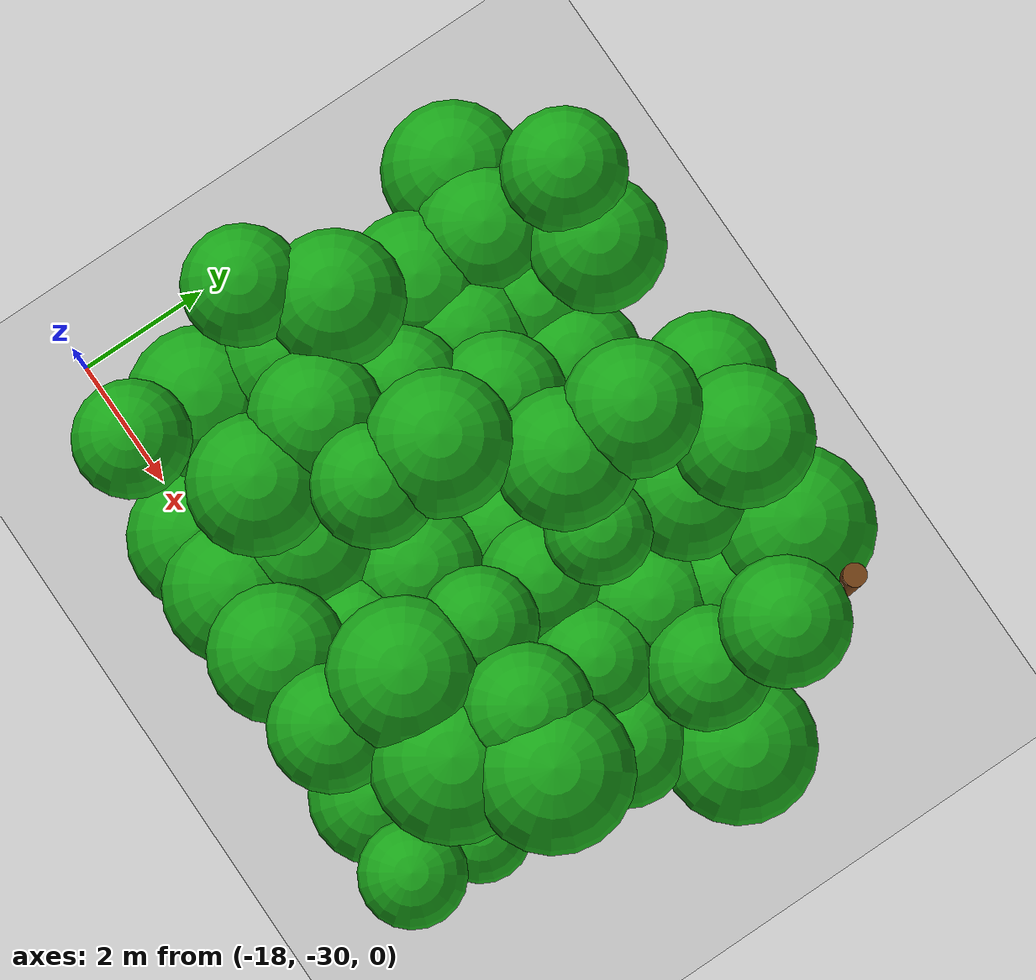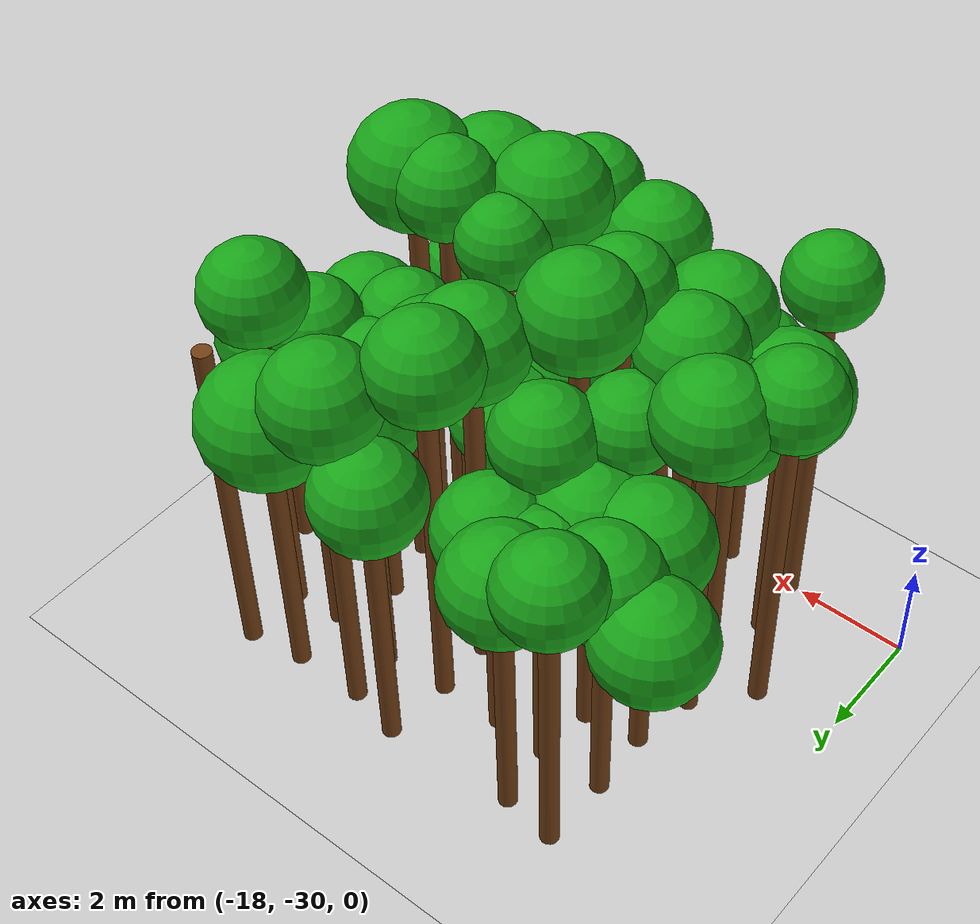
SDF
<sdf version="1.6">
 <world name="forest_world">
  <include><uri>model://sun</uri></include>
  <include><uri>model://ground_plane</uri></include>
  <model name="tree_662_trunk">
   <static>true</static>
   <pose>-16.62 -27.72 3.23 0 0 0</pose>
   <link name="link">
    <collision name="collision">
     <geometry><cylinder><radius>0.16</radius><length>6.46</length></cylinder></geometry>
    </collision>
    <visual name="visual">
     <geometry><cylinder><radius>0.16</radius><length>6.46</length></cylinder></geometry>
     <material><ambient>0.35 0.20 0.05 1</ambient><diffuse>0.45 0.25 0.08 1</diffuse></material>
    </visual>
   </link>
  </model>
  <model name="tree_662_leaf">
   <static>true</static>
   <pose>-16.62 -27.72 6.94 0 0 0</pose>
   <link name="link">
    <collision name="collision"><geometry><sphere><radius>0.81</radius></sphere></geometry></collision>
    <visual name="visual">
     <geometry><sphere><radius>0.81</radius></sphere></geometry>
     <material><ambient>0.05 0.45 0.05 1</ambient><diffuse>0.10 0.65 0.10 1</diffuse></material>
    </visual>
   </link>
  </model>
  <model name="tree_665_leaf">
   <static>true</static>
   <pose>-16.67 -24.44 4.72 0 0 0</pose>
   <link name="link">
    <collision name="collision"><geometry><sphere><radius>0.98</radius></sphere></geometry></collision>
    <visual name="visual">
     <geometry><sphere><radius>0.98</radius></sphere></geometry>
     <material><ambient>0.05 0.45 0.05 1</ambient><diffuse>0.10 0.65 0.10 1</diffuse></material>
    </visual>
   </link>
  </model>
  <model name="tree_715_trunk">
   <static>true</static>
   <pose>-15.74 -29.99 3.32 0 0 0</pose>
   <link name="link">
    <collision name="collision">
     <geometry><cylinder><radius>0.16</radius><length>6.65</length></cylinder></geometry>
    </collision>
    <visual name="visual">
     <geometry><cylinder><radius>0.16</radius><length>6.65</length></cylinder></geometry>
     <material><ambient>0.35 0.20 0.05 1</ambient><diffuse>0.45 0.25 0.08 1</diffuse></material>
    </visual>
   </link>
  </model>
  <model name="tree_715_leaf">
   <static>true</static>
   <pose>-15.74 -29.99 7.12 0 0 0</pose>
   <link name="link">
    <collision name="collision"><geometry><sphere><radius>0.78</radius></sphere></geometry></collision>
    <visual name="visual">
     <geometry><sphere><radius>0.78</radius></sphere></geometry>
     <material><ambient>0.05 0.45 0.05 1</ambient><diffuse>0.10 0.65 0.10 1</diffuse></material>
    </visual>
   </link>
  </model>
  <model name="tree_716_trunk">
   <static>true</static>
   <pose>-15.84 -28.95 2.51 0 0 0</pose>
   <link name="link">
    <collision name="collision">
     <geometry><cylinder><radius>0.16</radius><length>5.02</length></cylinder></geometry>
    </collision>
    <visual name="visual">
     <geometry><cylinder><radius>0.16</radius><length>5.02</length></cylinder></geometry>
     <material><ambient>0.35 0.20 0.05 1</ambient><diffuse>0.45 0.25 0.08 1</diffuse></material>
    </visual>
   </link>
  </model>
  <model name="tree_716_leaf">
   <static>true</static>
   <pose>-15.84 -28.95 5.63 0 0 0</pose>
   <link name="link">
    <collision name="collision"><geometry><sphere><radius>1.03</radius></sphere></geometry></collision>
    <visual name="visual">
     <geometry><sphere><radius>1.03</radius></sphere></geometry>
     <material><ambient>0.05 0.45 0.05 1</ambient><diffuse>0.10 0.65 0.10 1</diffuse></material>
    </visual>
   </link>
  </model>
  <model name="tree_717_trunk">
   <static>true</static>
   <pose>-15.61 -27.68 2.65 0 0 0</pose>
   <link name="link">
    <collision name="collision">
     <geometry><cylinder><radius>0.16</radius><length>5.31</length></cylinder></geometry>
    </collision>
    <visual name="visual">
     <geometry><cylinder><radius>0.16</radius><length>5.31</length></cylinder></geometry>
     <material><ambient>0.35 0.20 0.05 1</ambient><diffuse>0.45 0.25 0.08 1</diffuse></material>
    </visual>
   </link>
  </model>
  <model name="tree_717_leaf">
   <static>true</static>
   <pose>-15.61 -27.68 5.90 0 0 0</pose>
   <link name="link">
    <collision name="collision"><geometry><sphere><radius>0.99</radius></sphere></geometry></collision>
    <visual name="visual">
     <geometry><sphere><radius>0.99</radius></sphere></geometry>
     <material><ambient>0.05 0.45 0.05 1</ambient><diffuse>0.10 0.65 0.10 1</diffuse></material>
    </visual>
   </link>
  </model>
  <model name="tree_718_trunk">
   <static>true</static>
   <pose>-15.83 -26.83 3.10 0 0 0</pose>
   <link name="link">
    <collision name="collision">
     <geometry><cylinder><radius>0.16</radius><length>6.21</length></cylinder></geometry>
    </collision>
    <visual name="visual">
     <geometry><cylinder><radius>0.16</radius><length>6.21</length></cylinder></geometry>
     <material><ambient>0.35 0.20 0.05 1</ambient><diffuse>0.45 0.25 0.08 1</diffuse></material>
    </visual>
   </link>
  </model>
  <model name="tree_718_leaf">
   <static>true</static>
   <pose>-15.83 -26.83 6.77 0 0 0</pose>
   <link name="link">
    <collision name="collision"><geometry><sphere><radius>0.93</radius></sphere></geometry></collision>
    <visual name="visual">
     <geometry><sphere><radius>0.93</radius></sphere></geometry>
     <material><ambient>0.05 0.45 0.05 1</ambient><diffuse>0.10 0.65 0.10 1</diffuse></material>
    </visual>
   </link>
  </model>
  <model name="tree_719_trunk">
   <static>true</static>
   <pose>-15.63 -25.71 2.13 0 0 0</pose>
   <link name="link">
    <collision name="collision">
     <geometry><cylinder><radius>0.16</radius><length>4.26</length></cylinder></geometry>
    </collision>
    <visual name="visual">
     <geometry><cylinder><radius>0.16</radius><length>4.26</length></cylinder></geometry>
     <material><ambient>0.35 0.20 0.05 1</ambient><diffuse>0.45 0.25 0.08 1</diffuse></material>
    </visual>
   </link>
  </model>
  <model name="tree_719_leaf">
   <static>true</static>
   <pose>-15.63 -25.71 4.89 0 0 0</pose>
   <link name="link">
    <collision name="collision"><geometry><sphere><radius>1.04</radius></sphere></geometry></collision>
    <visual name="visual">
     <geometry><sphere><radius>1.04</radius></sphere></geometry>
     <material><ambient>0.05 0.45 0.05 1</ambient><diffuse>0.10 0.65 0.10 1</diffuse></material>
    </visual>
   </link>
  </model>
  <model name="tree_720_trunk">
   <static>true</static>
   <pose>-15.69 -24.60 2.28 0 0 0</pose>
   <link name="link">
    <collision name="collision">
     <geometry><cylinder><radius>0.16</radius><length>4.55</length></cylinder></geometry>
    </collision>
    <visual name="visual">
     <geometry><cylinder><radius>0.16</radius><length>4.55</length></cylinder></geometry>
     <material><ambient>0.35 0.20 0.05 1</ambient><diffuse>0.45 0.25 0.08 1</diffuse></material>
    </visual>
   </link>
  </model>
  <model name="tree_720_leaf">
   <static>true</static>
   <pose>-15.69 -24.60 5.12 0 0 0</pose>
   <link name="link">
    <collision name="collision"><geometry><sphere><radius>0.94</radius></sphere></geometry></collision>
    <visual name="visual">
     <geometry><sphere><radius>0.94</radius></sphere></geometry>
     <material><ambient>0.05 0.45 0.05 1</ambient><diffuse>0.10 0.65 0.10 1</diffuse></material>
    </visual>
   </link>
  </model>
  <model name="tree_721_trunk">
   <static>true</static>
   <pose>-15.66 -23.36 2.80 0 0 0</pose>
   <link name="link">
    <collision name="collision">
     <geometry><cylinder><radius>0.16</radius><length>5.59</length></cylinder></geometry>
    </collision>
    <visual name="visual">
     <geometry><cylinder><radius>0.16</radius><length>5.59</length></cylinder></geometry>
     <material><ambient>0.35 0.20 0.05 1</ambient><diffuse>0.45 0.25 0.08 1</diffuse></material>
    </visual>
   </link>
  </model>
  <model name="tree_721_leaf">
   <static>true</static>
   <pose>-15.66 -23.36 6.10 0 0 0</pose>
   <link name="link">
    <collision name="collision"><geometry><sphere><radius>0.85</radius></sphere></geometry></collision>
    <visual name="visual">
     <geometry><sphere><radius>0.85</radius></sphere></geometry>
     <material><ambient>0.05 0.45 0.05 1</ambient><diffuse>0.10 0.65 0.10 1</diffuse></material>
    </visual>
   </link>
  </model>
  <model name="tree_770_trunk">
   <static>true</static>
   <pose>-14.48 -29.97 2.04 0 0 0</pose>
   <link name="link">
    <collision name="collision">
     <geometry><cylinder><radius>0.16</radius><length>4.09</length></cylinder></geometry>
    </collision>
    <visual name="visual">
     <geometry><cylinder><radius>0.16</radius><length>4.09</length></cylinder></geometry>
     <material><ambient>0.35 0.20 0.05 1</ambient><diffuse>0.45 0.25 0.08 1</diffuse></material>
    </visual>
   </link>
  </model>
  <model name="tree_770_leaf">
   <static>true</static>
   <pose>-14.48 -29.97 4.69 0 0 0</pose>
   <link name="link">
    <collision name="collision"><geometry><sphere><radius>1.00</radius></sphere></geometry></collision>
    <visual name="visual">
     <geometry><sphere><radius>1.00</radius></sphere></geometry>
     <material><ambient>0.05 0.45 0.05 1</ambient><diffuse>0.10 0.65 0.10 1</diffuse></material>
    </visual>
   </link>
  </model>
  <model name="tree_771_trunk">
   <static>true</static>
   <pose>-14.43 -28.97 2.95 0 0 0</pose>
   <link name="link">
    <collision name="collision">
     <geometry><cylinder><radius>0.16</radius><length>5.91</length></cylinder></geometry>
    </collision>
    <visual name="visual">
     <geometry><cylinder><radius>0.16</radius><length>5.91</length></cylinder></geometry>
     <material><ambient>0.35 0.20 0.05 1</ambient><diffuse>0.45 0.25 0.08 1</diffuse></material>
    </visual>
   </link>
  </model>
  <model name="tree_771_leaf">
   <static>true</static>
   <pose>-14.43 -28.97 6.47 0 0 0</pose>
   <link name="link">
    <collision name="collision"><geometry><sphere><radius>0.95</radius></sphere></geometry></collision>
    <visual name="visual">
     <geometry><sphere><radius>0.95</radius></sphere></geometry>
     <material><ambient>0.05 0.45 0.05 1</ambient><diffuse>0.10 0.65 0.10 1</diffuse></material>
    </visual>
   </link>
  </model>
  <model name="tree_772_trunk">
   <static>true</static>
   <pose>-14.71 -27.88 3.06 0 0 0</pose>
   <link name="link">
    <collision name="collision">
     <geometry><cylinder><radius>0.16</radius><length>6.11</length></cylinder></geometry>
    </collision>
    <visual name="visual">
     <geometry><cylinder><radius>0.16</radius><length>6.11</length></cylinder></geometry>
     <material><ambient>0.35 0.20 0.05 1</ambient><diffuse>0.45 0.25 0.08 1</diffuse></material>
    </visual>
   </link>
  </model>
  <model name="tree_772_leaf">
   <static>true</static>
   <pose>-14.71 -27.88 6.65 0 0 0</pose>
   <link name="link">
    <collision name="collision"><geometry><sphere><radius>0.90</radius></sphere></geometry></collision>
    <visual name="visual">
     <geometry><sphere><radius>0.90</radius></sphere></geometry>
     <material><ambient>0.05 0.45 0.05 1</ambient><diffuse>0.10 0.65 0.10 1</diffuse></material>
    </visual>
   </link>
  </model>
  <model name="tree_773_trunk">
   <static>true</static>
   <pose>-14.51 -26.69 2.72 0 0 0</pose>
   <link name="link">
    <collision name="collision">
     <geometry><cylinder><radius>0.16</radius><length>5.45</length></cylinder></geometry>
    </collision>
    <visual name="visual">
     <geometry><cylinder><radius>0.16</radius><length>5.45</length></cylinder></geometry>
     <material><ambient>0.35 0.20 0.05 1</ambient><diffuse>0.45 0.25 0.08 1</diffuse></material>
    </visual>
   </link>
  </model>
  <model name="tree_773_leaf">
   <static>true</static>
   <pose>-14.51 -26.69 5.94 0 0 0</pose>
   <link name="link">
    <collision name="collision"><geometry><sphere><radius>0.81</radius></sphere></geometry></collision>
    <visual name="visual">
     <geometry><sphere><radius>0.81</radius></sphere></geometry>
     <material><ambient>0.05 0.45 0.05 1</ambient><diffuse>0.10 0.65 0.10 1</diffuse></material>
    </visual>
   </link>
  </model>
  <model name="tree_774_trunk">
   <static>true</static>
   <pose>-14.67 -25.55 2.17 0 0 0</pose>
   <link name="link">
    <collision name="collision">
     <geometry><cylinder><radius>0.16</radius><length>4.33</length></cylinder></geometry>
    </collision>
    <visual name="visual">
     <geometry><cylinder><radius>0.16</radius><length>4.33</length></cylinder></geometry>
     <material><ambient>0.35 0.20 0.05 1</ambient><diffuse>0.45 0.25 0.08 1</diffuse></material>
    </visual>
   </link>
  </model>
  <model name="tree_774_leaf">
   <static>true</static>
   <pose>-14.67 -25.55 4.91 0 0 0</pose>
   <link name="link">
    <collision name="collision"><geometry><sphere><radius>0.96</radius></sphere></geometry></collision>
    <visual name="visual">
     <geometry><sphere><radius>0.96</radius></sphere></geometry>
     <material><ambient>0.05 0.45 0.05 1</ambient><diffuse>0.10 0.65 0.10 1</diffuse></material>
    </visual>
   </link>
  </model>
  <model name="tree_775_trunk">
   <static>true</static>
   <pose>-14.57 -24.55 2.06 0 0 0</pose>
   <link name="link">
    <collision name="collision">
     <geometry><cylinder><radius>0.16</radius><length>4.13</length></cylinder></geometry>
    </collision>
    <visual name="visual">
     <geometry><cylinder><radius>0.16</radius><length>4.13</length></cylinder></geometry>
     <material><ambient>0.35 0.20 0.05 1</ambient><diffuse>0.45 0.25 0.08 1</diffuse></material>
    </visual>
   </link>
  </model>
  <model name="tree_775_leaf">
   <static>true</static>
   <pose>-14.57 -24.55 4.69 0 0 0</pose>
   <link name="link">
    <collision name="collision"><geometry><sphere><radius>0.94</radius></sphere></geometry></collision>
    <visual name="visual">
     <geometry><sphere><radius>0.94</radius></sphere></geometry>
     <material><ambient>0.05 0.45 0.05 1</ambient><diffuse>0.10 0.65 0.10 1</diffuse></material>
    </visual>
   </link>
  </model>
  <model name="tree_776_trunk">
   <static>true</static>
   <pose>-14.71 -23.48 2.42 0 0 0</pose>
   <link name="link">
    <collision name="collision">
     <geometry><cylinder><radius>0.16</radius><length>4.84</length></cylinder></geometry>
    </collision>
    <visual name="visual">
     <geometry><cylinder><radius>0.16</radius><length>4.84</length></cylinder></geometry>
     <material><ambient>0.35 0.20 0.05 1</ambient><diffuse>0.45 0.25 0.08 1</diffuse></material>
    </visual>
   </link>
  </model>
  <model name="tree_776_leaf">
   <static>true</static>
   <pose>-14.71 -23.48 5.40 0 0 0</pose>
   <link name="link">
    <collision name="collision"><geometry><sphere><radius>0.95</radius></sphere></geometry></collision>
    <visual name="visual">
     <geometry><sphere><radius>0.95</radius></sphere></geometry>
     <material><ambient>0.05 0.45 0.05 1</ambient><diffuse>0.10 0.65 0.10 1</diffuse></material>
    </visual>
   </link>
  </model>
  <model name="tree_825_trunk">
   <static>true</static>
   <pose>-13.56 -29.96 2.31 0 0 0</pose>
   <link name="link">
    <collision name="collision">
     <geometry><cylinder><radius>0.16</radius><length>4.62</length></cylinder></geometry>
    </collision>
    <visual name="visual">
     <geometry><cylinder><radius>0.16</radius><length>4.62</length></cylinder></geometry>
     <material><ambient>0.35 0.20 0.05 1</ambient><diffuse>0.45 0.25 0.08 1</diffuse></material>
    </visual>
   </link>
  </model>
  <model name="tree_825_leaf">
   <static>true</static>
   <pose>-13.56 -29.96 5.22 0 0 0</pose>
   <link name="link">
    <collision name="collision"><geometry><sphere><radius>1.01</radius></sphere></geometry></collision>
    <visual name="visual">
     <geometry><sphere><radius>1.01</radius></sphere></geometry>
     <material><ambient>0.05 0.45 0.05 1</ambient><diffuse>0.10 0.65 0.10 1</diffuse></material>
    </visual>
   </link>
  </model>
  <model name="tree_826_trunk">
   <static>true</static>
   <pose>-13.60 -28.83 2.39 0 0 0</pose>
   <link name="link">
    <collision name="collision">
     <geometry><cylinder><radius>0.16</radius><length>4.78</length></cylinder></geometry>
    </collision>
    <visual name="visual">
     <geometry><cylinder><radius>0.16</radius><length>4.78</length></cylinder></geometry>
     <material><ambient>0.35 0.20 0.05 1</ambient><diffuse>0.45 0.25 0.08 1</diffuse></material>
    </visual>
   </link>
  </model>
  <model name="tree_826_leaf">
   <static>true</static>
   <pose>-13.60 -28.83 5.40 0 0 0</pose>
   <link name="link">
    <collision name="collision"><geometry><sphere><radius>1.03</radius></sphere></geometry></collision>
    <visual name="visual">
     <geometry><sphere><radius>1.03</radius></sphere></geometry>
     <material><ambient>0.05 0.45 0.05 1</ambient><diffuse>0.10 0.65 0.10 1</diffuse></material>
    </visual>
   </link>
  </model>
  <model name="tree_827_trunk">
   <static>true</static>
   <pose>-13.50 -27.78 3.40 0 0 0</pose>
   <link name="link">
    <collision name="collision">
     <geometry><cylinder><radius>0.16</radius><length>6.80</length></cylinder></geometry>
    </collision>
    <visual name="visual">
     <geometry><cylinder><radius>0.16</radius><length>6.80</length></cylinder></geometry>
     <material><ambient>0.35 0.20 0.05 1</ambient><diffuse>0.45 0.25 0.08 1</diffuse></material>
    </visual>
   </link>
  </model>
  <model name="tree_827_leaf">
   <static>true</static>
   <pose>-13.50 -27.78 7.29 0 0 0</pose>
   <link name="link">
    <collision name="collision"><geometry><sphere><radius>0.82</radius></sphere></geometry></collision>
    <visual name="visual">
     <geometry><sphere><radius>0.82</radius></sphere></geometry>
     <material><ambient>0.05 0.45 0.05 1</ambient><diffuse>0.10 0.65 0.10 1</diffuse></material>
    </visual>
   </link>
  </model>
  <model name="tree_828_trunk">
   <static>true</static>
   <pose>-13.46 -26.80 3.44 0 0 0</pose>
   <link name="link">
    <collision name="collision">
     <geometry><cylinder><radius>0.16</radius><length>6.88</length></cylinder></geometry>
    </collision>
    <visual name="visual">
     <geometry><cylinder><radius>0.16</radius><length>6.88</length></cylinder></geometry>
     <material><ambient>0.35 0.20 0.05 1</ambient><diffuse>0.45 0.25 0.08 1</diffuse></material>
    </visual>
   </link>
  </model>
  <model name="tree_828_leaf">
   <static>true</static>
   <pose>-13.46 -26.80 7.46 0 0 0</pose>
   <link name="link">
    <collision name="collision"><geometry><sphere><radius>0.97</radius></sphere></geometry></collision>
    <visual name="visual">
     <geometry><sphere><radius>0.97</radius></sphere></geometry>
     <material><ambient>0.05 0.45 0.05 1</ambient><diffuse>0.10 0.65 0.10 1</diffuse></material>
    </visual>
   </link>
  </model>
  <model name="tree_829_trunk">
   <static>true</static>
   <pose>-13.68 -25.71 2.67 0 0 0</pose>
   <link name="link">
    <collision name="collision">
     <geometry><cylinder><radius>0.16</radius><length>5.34</length></cylinder></geometry>
    </collision>
    <visual name="visual">
     <geometry><cylinder><radius>0.16</radius><length>5.34</length></cylinder></geometry>
     <material><ambient>0.35 0.20 0.05 1</ambient><diffuse>0.45 0.25 0.08 1</diffuse></material>
    </visual>
   </link>
  </model>
  <model name="tree_829_leaf">
   <static>true</static>
   <pose>-13.68 -25.71 5.87 0 0 0</pose>
   <link name="link">
    <collision name="collision"><geometry><sphere><radius>0.88</radius></sphere></geometry></collision>
    <visual name="visual">
     <geometry><sphere><radius>0.88</radius></sphere></geometry>
     <material><ambient>0.05 0.45 0.05 1</ambient><diffuse>0.10 0.65 0.10 1</diffuse></material>
    </visual>
   </link>
  </model>
  <model name="tree_830_trunk">
   <static>true</static>
   <pose>-13.61 -24.56 2.09 0 0 0</pose>
   <link name="link">
    <collision name="collision">
     <geometry><cylinder><radius>0.16</radius><length>4.17</length></cylinder></geometry>
    </collision>
    <visual name="visual">
     <geometry><cylinder><radius>0.16</radius><length>4.17</length></cylinder></geometry>
     <material><ambient>0.35 0.20 0.05 1</ambient><diffuse>0.45 0.25 0.08 1</diffuse></material>
    </visual>
   </link>
  </model>
  <model name="tree_830_leaf">
   <static>true</static>
   <pose>-13.61 -24.56 4.74 0 0 0</pose>
   <link name="link">
    <collision name="collision"><geometry><sphere><radius>0.95</radius></sphere></geometry></collision>
    <visual name="visual">
     <geometry><sphere><radius>0.95</radius></sphere></geometry>
     <material><ambient>0.05 0.45 0.05 1</ambient><diffuse>0.10 0.65 0.10 1</diffuse></material>
    </visual>
   </link>
  </model>
  <model name="tree_880_trunk">
   <static>true</static>
   <pose>-12.50 -29.99 2.85 0 0 0</pose>
   <link name="link">
    <collision name="collision">
     <geometry><cylinder><radius>0.16</radius><length>5.70</length></cylinder></geometry>
    </collision>
    <visual name="visual">
     <geometry><cylinder><radius>0.16</radius><length>5.70</length></cylinder></geometry>
     <material><ambient>0.35 0.20 0.05 1</ambient><diffuse>0.45 0.25 0.08 1</diffuse></material>
    </visual>
   </link>
  </model>
  <model name="tree_880_leaf">
   <static>true</static>
   <pose>-12.50 -29.99 6.25 0 0 0</pose>
   <link name="link">
    <collision name="collision"><geometry><sphere><radius>0.92</radius></sphere></geometry></collision>
    <visual name="visual">
     <geometry><sphere><radius>0.92</radius></sphere></geometry>
     <material><ambient>0.05 0.45 0.05 1</ambient><diffuse>0.10 0.65 0.10 1</diffuse></material>
    </visual>
   </link>
  </model>
  <model name="tree_881_trunk">
   <static>true</static>
   <pose>-12.23 -28.93 2.47 0 0 0</pose>
   <link name="link">
    <collision name="collision">
     <geometry><cylinder><radius>0.16</radius><length>4.93</length></cylinder></geometry>
    </collision>
    <visual name="visual">
     <geometry><cylinder><radius>0.16</radius><length>4.93</length></cylinder></geometry>
     <material><ambient>0.35 0.20 0.05 1</ambient><diffuse>0.45 0.25 0.08 1</diffuse></material>
    </visual>
   </link>
  </model>
  <model name="tree_881_leaf">
   <static>true</static>
   <pose>-12.23 -28.93 5.38 0 0 0</pose>
   <link name="link">
    <collision name="collision"><geometry><sphere><radius>0.75</radius></sphere></geometry></collision>
    <visual name="visual">
     <geometry><sphere><radius>0.75</radius></sphere></geometry>
     <material><ambient>0.05 0.45 0.05 1</ambient><diffuse>0.10 0.65 0.10 1</diffuse></material>
    </visual>
   </link>
  </model>
  <model name="tree_882_trunk">
   <static>true</static>
   <pose>-12.45 -27.86 2.33 0 0 0</pose>
   <link name="link">
    <collision name="collision">
     <geometry><cylinder><radius>0.16</radius><length>4.66</length></cylinder></geometry>
    </collision>
    <visual name="visual">
     <geometry><cylinder><radius>0.16</radius><length>4.66</length></cylinder></geometry>
     <material><ambient>0.35 0.20 0.05 1</ambient><diffuse>0.45 0.25 0.08 1</diffuse></material>
    </visual>
   </link>
  </model>
  <model name="tree_882_leaf">
   <static>true</static>
   <pose>-12.45 -27.86 5.23 0 0 0</pose>
   <link name="link">
    <collision name="collision"><geometry><sphere><radius>0.94</radius></sphere></geometry></collision>
    <visual name="visual">
     <geometry><sphere><radius>0.94</radius></sphere></geometry>
     <material><ambient>0.05 0.45 0.05 1</ambient><diffuse>0.10 0.65 0.10 1</diffuse></material>
    </visual>
   </link>
  </model>
  <model name="tree_883_trunk">
   <static>true</static>
   <pose>-12.23 -26.56 2.10 0 0 0</pose>
   <link name="link">
    <collision name="collision">
     <geometry><cylinder><radius>0.16</radius><length>4.21</length></cylinder></geometry>
    </collision>
    <visual name="visual">
     <geometry><cylinder><radius>0.16</radius><length>4.21</length></cylinder></geometry>
     <material><ambient>0.35 0.20 0.05 1</ambient><diffuse>0.45 0.25 0.08 1</diffuse></material>
    </visual>
   </link>
  </model>
  <model name="tree_883_leaf">
   <static>true</static>
   <pose>-12.23 -26.56 4.77 0 0 0</pose>
   <link name="link">
    <collision name="collision"><geometry><sphere><radius>0.94</radius></sphere></geometry></collision>
    <visual name="visual">
     <geometry><sphere><radius>0.94</radius></sphere></geometry>
     <material><ambient>0.05 0.45 0.05 1</ambient><diffuse>0.10 0.65 0.10 1</diffuse></material>
    </visual>
   </link>
  </model>
  <model name="tree_884_trunk">
   <static>true</static>
   <pose>-12.43 -25.56 3.28 0 0 0</pose>
   <link name="link">
    <collision name="collision">
     <geometry><cylinder><radius>0.16</radius><length>6.57</length></cylinder></geometry>
    </collision>
    <visual name="visual">
     <geometry><cylinder><radius>0.16</radius><length>6.57</length></cylinder></geometry>
     <material><ambient>0.35 0.20 0.05 1</ambient><diffuse>0.45 0.25 0.08 1</diffuse></material>
    </visual>
   </link>
  </model>
  <model name="tree_884_leaf">
   <static>true</static>
   <pose>-12.43 -25.56 7.13 0 0 0</pose>
   <link name="link">
    <collision name="collision"><geometry><sphere><radius>0.94</radius></sphere></geometry></collision>
    <visual name="visual">
     <geometry><sphere><radius>0.94</radius></sphere></geometry>
     <material><ambient>0.05 0.45 0.05 1</ambient><diffuse>0.10 0.65 0.10 1</diffuse></material>
    </visual>
   </link>
  </model>
  <model name="tree_885_trunk">
   <static>true</static>
   <pose>-12.46 -24.53 3.46 0 0 0</pose>
   <link name="link">
    <collision name="collision">
     <geometry><cylinder><radius>0.16</radius><length>6.92</length></cylinder></geometry>
    </collision>
    <visual name="visual">
     <geometry><cylinder><radius>0.16</radius><length>6.92</length></cylinder></geometry>
     <material><ambient>0.35 0.20 0.05 1</ambient><diffuse>0.45 0.25 0.08 1</diffuse></material>
    </visual>
   </link>
  </model>
  <model name="tree_885_leaf">
   <static>true</static>
   <pose>-12.46 -24.53 7.46 0 0 0</pose>
   <link name="link">
    <collision name="collision"><geometry><sphere><radius>0.91</radius></sphere></geometry></collision>
    <visual name="visual">
     <geometry><sphere><radius>0.91</radius></sphere></geometry>
     <material><ambient>0.05 0.45 0.05 1</ambient><diffuse>0.10 0.65 0.10 1</diffuse></material>
    </visual>
   </link>
  </model>
  <model name="tree_886_trunk">
   <static>true</static>
   <pose>-12.36 -23.31 2.59 0 0 0</pose>
   <link name="link">
    <collision name="collision">
     <geometry><cylinder><radius>0.16</radius><length>5.17</length></cylinder></geometry>
    </collision>
    <visual name="visual">
     <geometry><cylinder><radius>0.16</radius><length>5.17</length></cylinder></geometry>
     <material><ambient>0.35 0.20 0.05 1</ambient><diffuse>0.45 0.25 0.08 1</diffuse></material>
    </visual>
   </link>
  </model>
  <model name="tree_886_leaf">
   <static>true</static>
   <pose>-12.36 -23.31 5.72 0 0 0</pose>
   <link name="link">
    <collision name="collision"><geometry><sphere><radius>0.91</radius></sphere></geometry></collision>
    <visual name="visual">
     <geometry><sphere><radius>0.91</radius></sphere></geometry>
     <material><ambient>0.05 0.45 0.05 1</ambient><diffuse>0.10 0.65 0.10 1</diffuse></material>
    </visual>
   </link>
  </model>
  <model name="tree_935_trunk">
   <static>true</static>
   <pose>-11.28 -29.93 3.11 0 0 0</pose>
   <link name="link">
    <collision name="collision">
     <geometry><cylinder><radius>0.16</radius><length>6.22</length></cylinder></geometry>
    </collision>
    <visual name="visual">
     <geometry><cylinder><radius>0.16</radius><length>6.22</length></cylinder></geometry>
     <material><ambient>0.35 0.20 0.05 1</ambient><diffuse>0.45 0.25 0.08 1</diffuse></material>
    </visual>
   </link>
  </model>
  <model name="tree_935_leaf">
   <static>true</static>
   <pose>-11.28 -29.93 6.73 0 0 0</pose>
   <link name="link">
    <collision name="collision"><geometry><sphere><radius>0.85</radius></sphere></geometry></collision>
    <visual name="visual">
     <geometry><sphere><radius>0.85</radius></sphere></geometry>
     <material><ambient>0.05 0.45 0.05 1</ambient><diffuse>0.10 0.65 0.10 1</diffuse></material>
    </visual>
   </link>
  </model>
  <model name="tree_936_trunk">
   <static>true</static>
   <pose>-11.30 -28.80 3.31 0 0 0</pose>
   <link name="link">
    <collision name="collision">
     <geometry><cylinder><radius>0.16</radius><length>6.62</length></cylinder></geometry>
    </collision>
    <visual name="visual">
     <geometry><cylinder><radius>0.16</radius><length>6.62</length></cylinder></geometry>
     <material><ambient>0.35 0.20 0.05 1</ambient><diffuse>0.45 0.25 0.08 1</diffuse></material>
    </visual>
   </link>
  </model>
  <model name="tree_936_leaf">
   <static>true</static>
   <pose>-11.30 -28.80 7.23 0 0 0</pose>
   <link name="link">
    <collision name="collision"><geometry><sphere><radius>1.01</radius></sphere></geometry></collision>
    <visual name="visual">
     <geometry><sphere><radius>1.01</radius></sphere></geometry>
     <material><ambient>0.05 0.45 0.05 1</ambient><diffuse>0.10 0.65 0.10 1</diffuse></material>
    </visual>
   </link>
  </model>
  <model name="tree_937_trunk">
   <static>true</static>
   <pose>-11.29 -27.66 3.29 0 0 0</pose>
   <link name="link">
    <collision name="collision">
     <geometry><cylinder><radius>0.16</radius><length>6.59</length></cylinder></geometry>
    </collision>
    <visual name="visual">
     <geometry><cylinder><radius>0.16</radius><length>6.59</length></cylinder></geometry>
     <material><ambient>0.35 0.20 0.05 1</ambient><diffuse>0.45 0.25 0.08 1</diffuse></material>
    </visual>
   </link>
  </model>
  <model name="tree_937_leaf">
   <static>true</static>
   <pose>-11.29 -27.66 7.05 0 0 0</pose>
   <link name="link">
    <collision name="collision"><geometry><sphere><radius>0.77</radius></sphere></geometry></collision>
    <visual name="visual">
     <geometry><sphere><radius>0.77</radius></sphere></geometry>
     <material><ambient>0.05 0.45 0.05 1</ambient><diffuse>0.10 0.65 0.10 1</diffuse></material>
    </visual>
   </link>
  </model>
  <model name="tree_938_trunk">
   <static>true</static>
   <pose>-11.42 -26.58 2.50 0 0 0</pose>
   <link name="link">
    <collision name="collision">
     <geometry><cylinder><radius>0.16</radius><length>5.01</length></cylinder></geometry>
    </collision>
    <visual name="visual">
     <geometry><cylinder><radius>0.16</radius><length>5.01</length></cylinder></geometry>
     <material><ambient>0.35 0.20 0.05 1</ambient><diffuse>0.45 0.25 0.08 1</diffuse></material>
    </visual>
   </link>
  </model>
  <model name="tree_938_leaf">
   <static>true</static>
   <pose>-11.42 -26.58 5.51 0 0 0</pose>
   <link name="link">
    <collision name="collision"><geometry><sphere><radius>0.84</radius></sphere></geometry></collision>
    <visual name="visual">
     <geometry><sphere><radius>0.84</radius></sphere></geometry>
     <material><ambient>0.05 0.45 0.05 1</ambient><diffuse>0.10 0.65 0.10 1</diffuse></material>
    </visual>
   </link>
  </model>
  <model name="tree_939_trunk">
   <static>true</static>
   <pose>-11.47 -25.69 3.05 0 0 0</pose>
   <link name="link">
    <collision name="collision">
     <geometry><cylinder><radius>0.16</radius><length>6.09</length></cylinder></geometry>
    </collision>
    <visual name="visual">
     <geometry><cylinder><radius>0.16</radius><length>6.09</length></cylinder></geometry>
     <material><ambient>0.35 0.20 0.05 1</ambient><diffuse>0.45 0.25 0.08 1</diffuse></material>
    </visual>
   </link>
  </model>
  <model name="tree_939_leaf">
   <static>true</static>
   <pose>-11.47 -25.69 6.52 0 0 0</pose>
   <link name="link">
    <collision name="collision"><geometry><sphere><radius>0.71</radius></sphere></geometry></collision>
    <visual name="visual">
     <geometry><sphere><radius>0.71</radius></sphere></geometry>
     <material><ambient>0.05 0.45 0.05 1</ambient><diffuse>0.10 0.65 0.10 1</diffuse></material>
    </visual>
   </link>
  </model>
  <model name="tree_940_trunk">
   <static>true</static>
   <pose>-11.32 -24.36 2.69 0 0 0</pose>
   <link name="link">
    <collision name="collision">
     <geometry><cylinder><radius>0.16</radius><length>5.37</length></cylinder></geometry>
    </collision>
    <visual name="visual">
     <geometry><cylinder><radius>0.16</radius><length>5.37</length></cylinder></geometry>
     <material><ambient>0.35 0.20 0.05 1</ambient><diffuse>0.45 0.25 0.08 1</diffuse></material>
    </visual>
   </link>
  </model>
  <model name="tree_940_leaf">
   <static>true</static>
   <pose>-11.32 -24.36 5.96 0 0 0</pose>
   <link name="link">
    <collision name="collision"><geometry><sphere><radius>0.97</radius></sphere></geometry></collision>
    <visual name="visual">
     <geometry><sphere><radius>0.97</radius></sphere></geometry>
     <material><ambient>0.05 0.45 0.05 1</ambient><diffuse>0.10 0.65 0.10 1</diffuse></material>
    </visual>
   </link>
  </model>
  <model name="tree_941_trunk">
   <static>true</static>
   <pose>-11.41 -23.51 3.19 0 0 0</pose>
   <link name="link">
    <collision name="collision">
     <geometry><cylinder><radius>0.16</radius><length>6.38</length></cylinder></geometry>
    </collision>
    <visual name="visual">
     <geometry><cylinder><radius>0.16</radius><length>6.38</length></cylinder></geometry>
     <material><ambient>0.35 0.20 0.05 1</ambient><diffuse>0.45 0.25 0.08 1</diffuse></material>
    </visual>
   </link>
  </model>
  <model name="tree_941_leaf">
   <static>true</static>
   <pose>-11.41 -23.51 6.95 0 0 0</pose>
   <link name="link">
    <collision name="collision"><geometry><sphere><radius>0.94</radius></sphere></geometry></collision>
    <visual name="visual">
     <geometry><sphere><radius>0.94</radius></sphere></geometry>
     <material><ambient>0.05 0.45 0.05 1</ambient><diffuse>0.10 0.65 0.10 1</diffuse></material>
    </visual>
   </link>
  </model>
  <model name="tree_990_trunk">
   <static>true</static>
   <pose>-10.31 -29.96 2.14 0 0 0</pose>
   <link name="link">
    <collision name="collision">
     <geometry><cylinder><radius>0.16</radius><length>4.29</length></cylinder></geometry>
    </collision>
    <visual name="visual">
     <geometry><cylinder><radius>0.16</radius><length>4.29</length></cylinder></geometry>
     <material><ambient>0.35 0.20 0.05 1</ambient><diffuse>0.45 0.25 0.08 1</diffuse></material>
    </visual>
   </link>
  </model>
  <model name="tree_990_leaf">
   <static>true</static>
   <pose>-10.31 -29.96 4.83 0 0 0</pose>
   <link name="link">
    <collision name="collision"><geometry><sphere><radius>0.91</radius></sphere></geometry></collision>
    <visual name="visual">
     <geometry><sphere><radius>0.91</radius></sphere></geometry>
     <material><ambient>0.05 0.45 0.05 1</ambient><diffuse>0.10 0.65 0.10 1</diffuse></material>
    </visual>
   </link>
  </model>
  <model name="tree_991_trunk">
   <static>true</static>
   <pose>-10.06 -28.90 3.12 0 0 0</pose>
   <link name="link">
    <collision name="collision">
     <geometry><cylinder><radius>0.16</radius><length>6.24</length></cylinder></geometry>
    </collision>
    <visual name="visual">
     <geometry><cylinder><radius>0.16</radius><length>6.24</length></cylinder></geometry>
     <material><ambient>0.35 0.20 0.05 1</ambient><diffuse>0.45 0.25 0.08 1</diffuse></material>
    </visual>
   </link>
  </model>
  <model name="tree_991_leaf">
   <static>true</static>
   <pose>-10.06 -28.90 6.89 0 0 0</pose>
   <link name="link">
    <collision name="collision"><geometry><sphere><radius>1.08</radius></sphere></geometry></collision>
    <visual name="visual">
     <geometry><sphere><radius>1.08</radius></sphere></geometry>
     <material><ambient>0.05 0.45 0.05 1</ambient><diffuse>0.10 0.65 0.10 1</diffuse></material>
    </visual>
   </link>
  </model>
  <model name="tree_992_trunk">
   <static>true</static>
   <pose>-10.06 -27.78 3.45 0 0 0</pose>
   <link name="link">
    <collision name="collision">
     <geometry><cylinder><radius>0.16</radius><length>6.89</length></cylinder></geometry>
    </collision>
    <visual name="visual">
     <geometry><cylinder><radius>0.16</radius><length>6.89</length></cylinder></geometry>
     <material><ambient>0.35 0.20 0.05 1</ambient><diffuse>0.45 0.25 0.08 1</diffuse></material>
    </visual>
   </link>
  </model>
  <model name="tree_992_leaf">
   <static>true</static>
   <pose>-10.06 -27.78 7.41 0 0 0</pose>
   <link name="link">
    <collision name="collision"><geometry><sphere><radius>0.86</radius></sphere></geometry></collision>
    <visual name="visual">
     <geometry><sphere><radius>0.86</radius></sphere></geometry>
     <material><ambient>0.05 0.45 0.05 1</ambient><diffuse>0.10 0.65 0.10 1</diffuse></material>
    </visual>
   </link>
  </model>
  <model name="tree_993_trunk">
   <static>true</static>
   <pose>-10.14 -26.62 2.54 0 0 0</pose>
   <link name="link">
    <collision name="collision">
     <geometry><cylinder><radius>0.16</radius><length>5.08</length></cylinder></geometry>
    </collision>
    <visual name="visual">
     <geometry><cylinder><radius>0.16</radius><length>5.08</length></cylinder></geometry>
     <material><ambient>0.35 0.20 0.05 1</ambient><diffuse>0.45 0.25 0.08 1</diffuse></material>
    </visual>
   </link>
  </model>
  <model name="tree_993_leaf">
   <static>true</static>
   <pose>-10.14 -26.62 5.57 0 0 0</pose>
   <link name="link">
    <collision name="collision"><geometry><sphere><radius>0.82</radius></sphere></geometry></collision>
    <visual name="visual">
     <geometry><sphere><radius>0.82</radius></sphere></geometry>
     <material><ambient>0.05 0.45 0.05 1</ambient><diffuse>0.10 0.65 0.10 1</diffuse></material>
    </visual>
   </link>
  </model>
  <model name="tree_994_trunk">
   <static>true</static>
   <pose>-10.37 -25.58 2.33 0 0 0</pose>
   <link name="link">
    <collision name="collision">
     <geometry><cylinder><radius>0.16</radius><length>4.67</length></cylinder></geometry>
    </collision>
    <visual name="visual">
     <geometry><cylinder><radius>0.16</radius><length>4.67</length></cylinder></geometry>
     <material><ambient>0.35 0.20 0.05 1</ambient><diffuse>0.45 0.25 0.08 1</diffuse></material>
    </visual>
   </link>
  </model>
  <model name="tree_994_leaf">
   <static>true</static>
   <pose>-10.37 -25.58 5.23 0 0 0</pose>
   <link name="link">
    <collision name="collision"><geometry><sphere><radius>0.94</radius></sphere></geometry></collision>
    <visual name="visual">
     <geometry><sphere><radius>0.94</radius></sphere></geometry>
     <material><ambient>0.05 0.45 0.05 1</ambient><diffuse>0.10 0.65 0.10 1</diffuse></material>
    </visual>
   </link>
  </model>
  <model name="tree_995_trunk">
   <static>true</static>
   <pose>-10.04 -24.53 2.33 0 0 0</pose>
   <link name="link">
    <collision name="collision">
     <geometry><cylinder><radius>0.16</radius><length>4.66</length></cylinder></geometry>
    </collision>
    <visual name="visual">
     <geometry><cylinder><radius>0.16</radius><length>4.66</length></cylinder></geometry>
     <material><ambient>0.35 0.20 0.05 1</ambient><diffuse>0.45 0.25 0.08 1</diffuse></material>
    </visual>
   </link>
  </model>
  <model name="tree_995_leaf">
   <static>true</static>
   <pose>-10.04 -24.53 5.18 0 0 0</pose>
   <link name="link">
    <collision name="collision"><geometry><sphere><radius>0.87</radius></sphere></geometry></collision>
    <visual name="visual">
     <geometry><sphere><radius>0.87</radius></sphere></geometry>
     <material><ambient>0.05 0.45 0.05 1</ambient><diffuse>0.10 0.65 0.10 1</diffuse></material>
    </visual>
   </link>
  </model>
  <model name="tree_996_trunk">
   <static>true</static>
   <pose>-10.14 -23.48 2.53 0 0 0</pose>
   <link name="link">
    <collision name="collision">
     <geometry><cylinder><radius>0.16</radius><length>5.07</length></cylinder></geometry>
    </collision>
    <visual name="visual">
     <geometry><cylinder><radius>0.16</radius><length>5.07</length></cylinder></geometry>
     <material><ambient>0.35 0.20 0.05 1</ambient><diffuse>0.45 0.25 0.08 1</diffuse></material>
    </visual>
   </link>
  </model>
  <model name="tree_996_leaf">
   <static>true</static>
   <pose>-10.14 -23.48 5.73 0 0 0</pose>
   <link name="link">
    <collision name="collision"><geometry><sphere><radius>1.09</radius></sphere></geometry></collision>
    <visual name="visual">
     <geometry><sphere><radius>1.09</radius></sphere></geometry>
     <material><ambient>0.05 0.45 0.05 1</ambient><diffuse>0.10 0.65 0.10 1</diffuse></material>
    </visual>
   </link>
  </model>
  <model name="tree_1045_trunk">
   <static>true</static>
   <pose>-9.18 -30.13 2.75 0 0 0</pose>
   <link name="link">
    <collision name="collision">
     <geometry><cylinder><radius>0.16</radius><length>5.51</length></cylinder></geometry>
    </collision>
    <visual name="visual">
     <geometry><cylinder><radius>0.16</radius><length>5.51</length></cylinder></geometry>
     <material><ambient>0.35 0.20 0.05 1</ambient><diffuse>0.45 0.25 0.08 1</diffuse></material>
    </visual>
   </link>
  </model>
  <model name="tree_1045_leaf">
   <static>true</static>
   <pose>-9.18 -30.13 5.94 0 0 0</pose>
   <link name="link">
    <collision name="collision"><geometry><sphere><radius>0.72</radius></sphere></geometry></collision>
    <visual name="visual">
     <geometry><sphere><radius>0.72</radius></sphere></geometry>
     <material><ambient>0.05 0.45 0.05 1</ambient><diffuse>0.10 0.65 0.10 1</diffuse></material>
    </visual>
   </link>
  </model>
  <model name="tree_1046_trunk">
   <static>true</static>
   <pose>-9.17 -29.08 2.03 0 0 0</pose>
   <link name="link">
    <collision name="collision">
     <geometry><cylinder><radius>0.16</radius><length>4.06</length></cylinder></geometry>
    </collision>
    <visual name="visual">
     <geometry><cylinder><radius>0.16</radius><length>4.06</length></cylinder></geometry>
     <material><ambient>0.35 0.20 0.05 1</ambient><diffuse>0.45 0.25 0.08 1</diffuse></material>
    </visual>
   </link>
  </model>
  <model name="tree_1046_leaf">
   <static>true</static>
   <pose>-9.17 -29.08 4.48 0 0 0</pose>
   <link name="link">
    <collision name="collision"><geometry><sphere><radius>0.70</radius></sphere></geometry></collision>
    <visual name="visual">
     <geometry><sphere><radius>0.70</radius></sphere></geometry>
     <material><ambient>0.05 0.45 0.05 1</ambient><diffuse>0.10 0.65 0.10 1</diffuse></material>
    </visual>
   </link>
  </model>
  <model name="tree_1047_trunk">
   <static>true</static>
   <pose>-9.23 -27.94 3.34 0 0 0</pose>
   <link name="link">
    <collision name="collision">
     <geometry><cylinder><radius>0.16</radius><length>6.68</length></cylinder></geometry>
    </collision>
    <visual name="visual">
     <geometry><cylinder><radius>0.16</radius><length>6.68</length></cylinder></geometry>
     <material><ambient>0.35 0.20 0.05 1</ambient><diffuse>0.45 0.25 0.08 1</diffuse></material>
    </visual>
   </link>
  </model>
  <model name="tree_1047_leaf">
   <static>true</static>
   <pose>-9.23 -27.94 7.31 0 0 0</pose>
   <link name="link">
    <collision name="collision"><geometry><sphere><radius>1.06</radius></sphere></geometry></collision>
    <visual name="visual">
     <geometry><sphere><radius>1.06</radius></sphere></geometry>
     <material><ambient>0.05 0.45 0.05 1</ambient><diffuse>0.10 0.65 0.10 1</diffuse></material>
    </visual>
   </link>
  </model>
  <model name="tree_1048_trunk">
   <static>true</static>
   <pose>-9.09 -26.86 2.24 0 0 0</pose>
   <link name="link">
    <collision name="collision">
     <geometry><cylinder><radius>0.16</radius><length>4.49</length></cylinder></geometry>
    </collision>
    <visual name="visual">
     <geometry><cylinder><radius>0.16</radius><length>4.49</length></cylinder></geometry>
     <material><ambient>0.35 0.20 0.05 1</ambient><diffuse>0.45 0.25 0.08 1</diffuse></material>
    </visual>
   </link>
  </model>
  <model name="tree_1048_leaf">
   <static>true</static>
   <pose>-9.09 -26.86 5.03 0 0 0</pose>
   <link name="link">
    <collision name="collision"><geometry><sphere><radius>0.91</radius></sphere></geometry></collision>
    <visual name="visual">
     <geometry><sphere><radius>0.91</radius></sphere></geometry>
     <material><ambient>0.05 0.45 0.05 1</ambient><diffuse>0.10 0.65 0.10 1</diffuse></material>
    </visual>
   </link>
  </model>
  <model name="tree_1049_trunk">
   <static>true</static>
   <pose>-9.24 -25.45 2.61 0 0 0</pose>
   <link name="link">
    <collision name="collision">
     <geometry><cylinder><radius>0.16</radius><length>5.23</length></cylinder></geometry>
    </collision>
    <visual name="visual">
     <geometry><cylinder><radius>0.16</radius><length>5.23</length></cylinder></geometry>
     <material><ambient>0.35 0.20 0.05 1</ambient><diffuse>0.45 0.25 0.08 1</diffuse></material>
    </visual>
   </link>
  </model>
  <model name="tree_1049_leaf">
   <static>true</static>
   <pose>-9.24 -25.45 5.73 0 0 0</pose>
   <link name="link">
    <collision name="collision"><geometry><sphere><radius>0.84</radius></sphere></geometry></collision>
    <visual name="visual">
     <geometry><sphere><radius>0.84</radius></sphere></geometry>
     <material><ambient>0.05 0.45 0.05 1</ambient><diffuse>0.10 0.65 0.10 1</diffuse></material>
    </visual>
   </link>
  </model>
  <model name="tree_1050_trunk">
   <static>true</static>
   <pose>-9.15 -24.42 3.28 0 0 0</pose>
   <link name="link">
    <collision name="collision">
     <geometry><cylinder><radius>0.16</radius><length>6.55</length></cylinder></geometry>
    </collision>
    <visual name="visual">
     <geometry><cylinder><radius>0.16</radius><length>6.55</length></cylinder></geometry>
     <material><ambient>0.35 0.20 0.05 1</ambient><diffuse>0.45 0.25 0.08 1</diffuse></material>
    </visual>
   </link>
  </model>
  <model name="tree_1050_leaf">
   <static>true</static>
   <pose>-9.15 -24.42 7.07 0 0 0</pose>
   <link name="link">
    <collision name="collision"><geometry><sphere><radius>0.86</radius></sphere></geometry></collision>
    <visual name="visual">
     <geometry><sphere><radius>0.86</radius></sphere></geometry>
     <material><ambient>0.05 0.45 0.05 1</ambient><diffuse>0.10 0.65 0.10 1</diffuse></material>
    </visual>
   </link>
  </model>
  <model name="tree_1051_trunk">
   <static>true</static>
   <pose>-9.15 -23.31 3.35 0 0 0</pose>
   <link name="link">
    <collision name="collision">
     <geometry><cylinder><radius>0.16</radius><length>6.70</length></cylinder></geometry>
    </collision>
    <visual name="visual">
     <geometry><cylinder><radius>0.16</radius><length>6.70</length></cylinder></geometry>
     <material><ambient>0.35 0.20 0.05 1</ambient><diffuse>0.45 0.25 0.08 1</diffuse></material>
    </visual>
   </link>
  </model>
  <model name="tree_1104_trunk">
   <static>true</static>
   <pose>-8.17 -25.63 2.09 0 0 0</pose>
   <link name="link">
    <collision name="collision">
     <geometry><cylinder><radius>0.16</radius><length>4.19</length></cylinder></geometry>
    </collision>
    <visual name="visual">
     <geometry><cylinder><radius>0.16</radius><length>4.19</length></cylinder></geometry>
     <material><ambient>0.35 0.20 0.05 1</ambient><diffuse>0.45 0.25 0.08 1</diffuse></material>
    </visual>
   </link>
  </model>
  <model name="tree_1104_leaf">
   <static>true</static>
   <pose>-8.17 -25.63 4.82 0 0 0</pose>
   <link name="link">
    <collision name="collision"><geometry><sphere><radius>1.05</radius></sphere></geometry></collision>
    <visual name="visual">
     <geometry><sphere><radius>1.05</radius></sphere></geometry>
     <material><ambient>0.05 0.45 0.05 1</ambient><diffuse>0.10 0.65 0.10 1</diffuse></material>
    </visual>
   </link>
  </model>
 </world>
</sdf>
